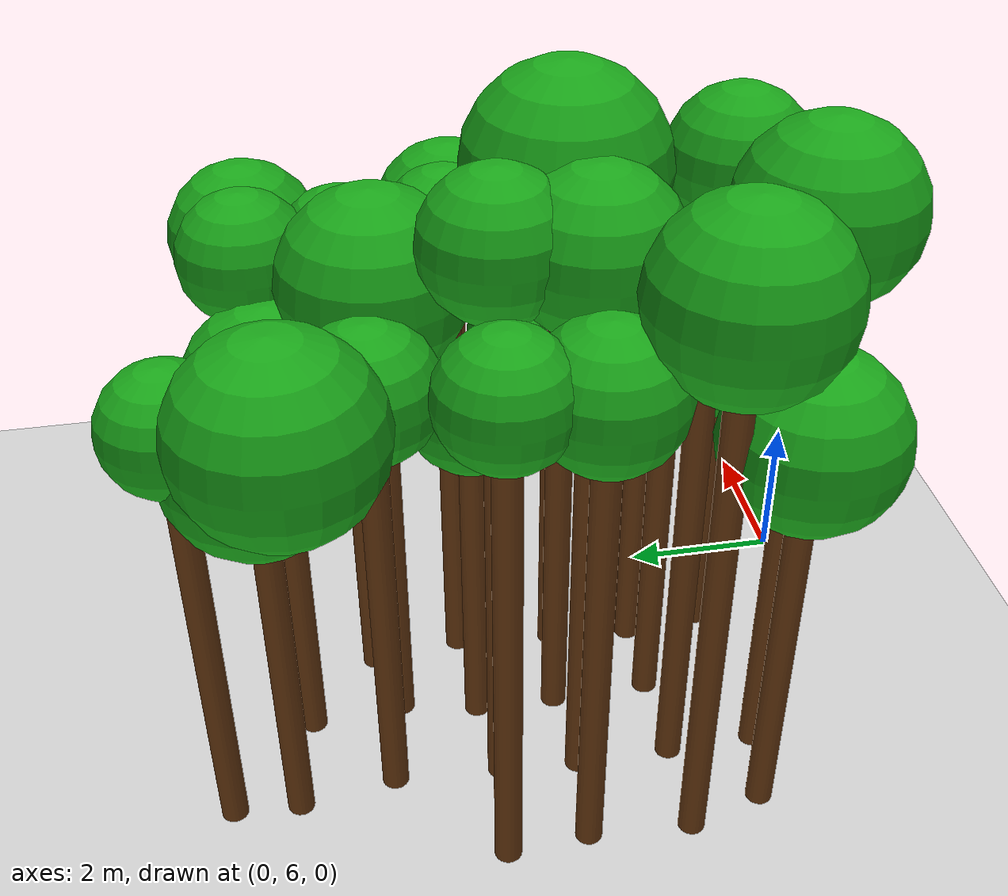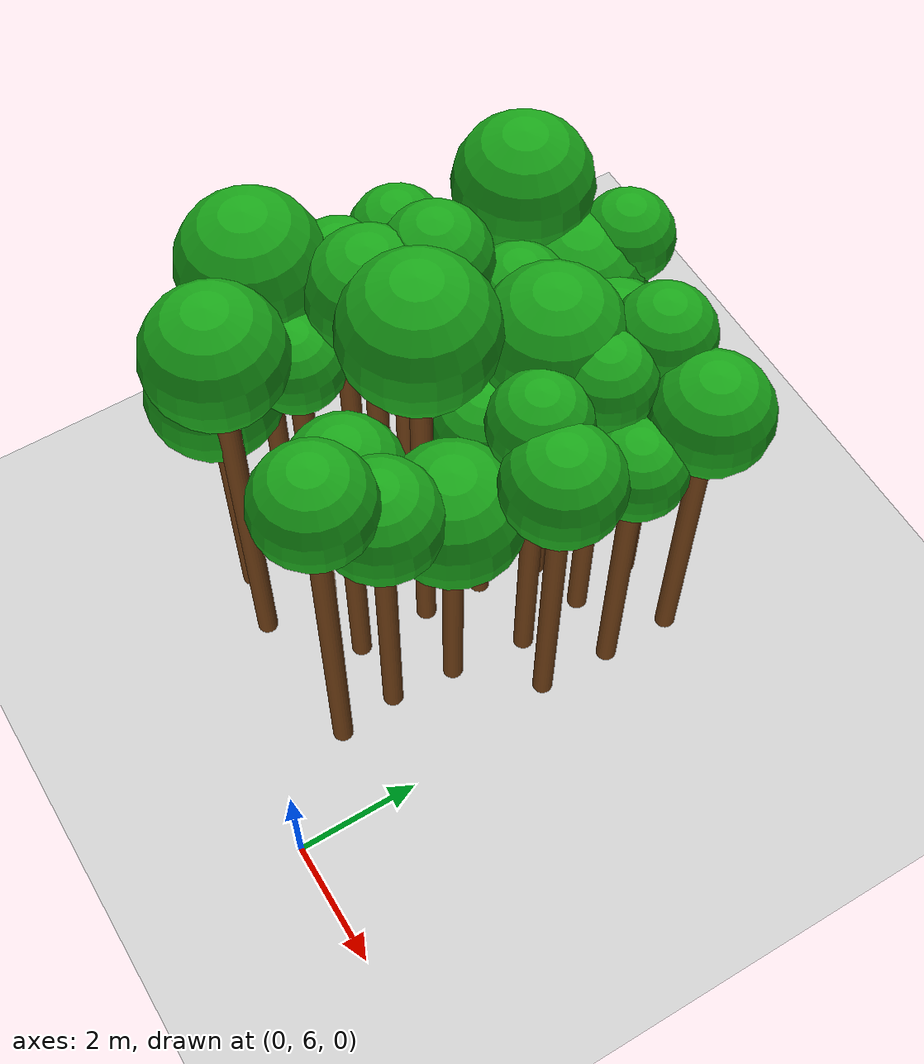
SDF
<sdf version="1.6">
 <world name="forest_world">
  <include><uri>model://sun</uri></include>
  <include><uri>model://ground_plane</uri></include>
  <model name="tree_1299_trunk">
   <static>true</static>
   <pose>-4.55 7.57 2.38 0 0 0</pose>
   <link name="link">
    <collision name="collision">
     <geometry><cylinder><radius>0.16</radius><length>4.76</length></cylinder></geometry>
    </collision>
    <visual name="visual">
     <geometry><cylinder><radius>0.16</radius><length>4.76</length></cylinder></geometry>
     <material><ambient>0.35 0.20 0.05 1</ambient><diffuse>0.45 0.25 0.08 1</diffuse></material>
    </visual>
   </link>
  </model>
  <model name="tree_1299_leaf">
   <static>true</static>
   <pose>-4.55 7.57 5.36 0 0 0</pose>
   <link name="link">
    <collision name="collision"><geometry><sphere><radius>1.00</radius></sphere></geometry></collision>
    <visual name="visual">
     <geometry><sphere><radius>1.00</radius></sphere></geometry>
     <material><ambient>0.05 0.45 0.05 1</ambient><diffuse>0.10 0.65 0.10 1</diffuse></material>
    </visual>
   </link>
  </model>
  <model name="tree_1300_trunk">
   <static>true</static>
   <pose>-4.84 8.50 3.31 0 0 0</pose>
   <link name="link">
    <collision name="collision">
     <geometry><cylinder><radius>0.16</radius><length>6.62</length></cylinder></geometry>
    </collision>
    <visual name="visual">
     <geometry><cylinder><radius>0.16</radius><length>6.62</length></cylinder></geometry>
     <material><ambient>0.35 0.20 0.05 1</ambient><diffuse>0.45 0.25 0.08 1</diffuse></material>
    </visual>
   </link>
  </model>
  <model name="tree_1300_leaf">
   <static>true</static>
   <pose>-4.84 8.50 7.24 0 0 0</pose>
   <link name="link">
    <collision name="collision"><geometry><sphere><radius>1.03</radius></sphere></geometry></collision>
    <visual name="visual">
     <geometry><sphere><radius>1.03</radius></sphere></geometry>
     <material><ambient>0.05 0.45 0.05 1</ambient><diffuse>0.10 0.65 0.10 1</diffuse></material>
    </visual>
   </link>
  </model>
  <model name="tree_1301_trunk">
   <static>true</static>
   <pose>-4.77 9.74 2.92 0 0 0</pose>
   <link name="link">
    <collision name="collision">
     <geometry><cylinder><radius>0.16</radius><length>5.83</length></cylinder></geometry>
    </collision>
    <visual name="visual">
     <geometry><cylinder><radius>0.16</radius><length>5.83</length></cylinder></geometry>
     <material><ambient>0.35 0.20 0.05 1</ambient><diffuse>0.45 0.25 0.08 1</diffuse></material>
    </visual>
   </link>
  </model>
  <model name="tree_1301_leaf">
   <static>true</static>
   <pose>-4.77 9.74 6.31 0 0 0</pose>
   <link name="link">
    <collision name="collision"><geometry><sphere><radius>0.80</radius></sphere></geometry></collision>
    <visual name="visual">
     <geometry><sphere><radius>0.80</radius></sphere></geometry>
     <material><ambient>0.05 0.45 0.05 1</ambient><diffuse>0.10 0.65 0.10 1</diffuse></material>
    </visual>
   </link>
  </model>
  <model name="tree_1302_trunk">
   <static>true</static>
   <pose>-4.85 10.72 3.00 0 0 0</pose>
   <link name="link">
    <collision name="collision">
     <geometry><cylinder><radius>0.16</radius><length>6.00</length></cylinder></geometry>
    </collision>
    <visual name="visual">
     <geometry><cylinder><radius>0.16</radius><length>6.00</length></cylinder></geometry>
     <material><ambient>0.35 0.20 0.05 1</ambient><diffuse>0.45 0.25 0.08 1</diffuse></material>
    </visual>
   </link>
  </model>
  <model name="tree_1302_leaf">
   <static>true</static>
   <pose>-4.85 10.72 6.44 0 0 0</pose>
   <link name="link">
    <collision name="collision"><geometry><sphere><radius>0.72</radius></sphere></geometry></collision>
    <visual name="visual">
     <geometry><sphere><radius>0.72</radius></sphere></geometry>
     <material><ambient>0.05 0.45 0.05 1</ambient><diffuse>0.10 0.65 0.10 1</diffuse></material>
    </visual>
   </link>
  </model>
  <model name="tree_1304_leaf">
   <static>true</static>
   <pose>-4.86 12.79 6.29 0 0 0</pose>
   <link name="link">
    <collision name="collision"><geometry><sphere><radius>1.05</radius></sphere></geometry></collision>
    <visual name="visual">
     <geometry><sphere><radius>1.05</radius></sphere></geometry>
     <material><ambient>0.05 0.45 0.05 1</ambient><diffuse>0.10 0.65 0.10 1</diffuse></material>
    </visual>
   </link>
  </model>
  <model name="tree_1354_trunk">
   <static>true</static>
   <pose>-3.64 7.37 3.41 0 0 0</pose>
   <link name="link">
    <collision name="collision">
     <geometry><cylinder><radius>0.16</radius><length>6.81</length></cylinder></geometry>
    </collision>
    <visual name="visual">
     <geometry><cylinder><radius>0.16</radius><length>6.81</length></cylinder></geometry>
     <material><ambient>0.35 0.20 0.05 1</ambient><diffuse>0.45 0.25 0.08 1</diffuse></material>
    </visual>
   </link>
  </model>
  <model name="tree_1354_leaf">
   <static>true</static>
   <pose>-3.64 7.37 7.40 0 0 0</pose>
   <link name="link">
    <collision name="collision"><geometry><sphere><radius>0.98</radius></sphere></geometry></collision>
    <visual name="visual">
     <geometry><sphere><radius>0.98</radius></sphere></geometry>
     <material><ambient>0.05 0.45 0.05 1</ambient><diffuse>0.10 0.65 0.10 1</diffuse></material>
    </visual>
   </link>
  </model>
  <model name="tree_1355_trunk">
   <static>true</static>
   <pose>-3.65 8.47 3.02 0 0 0</pose>
   <link name="link">
    <collision name="collision">
     <geometry><cylinder><radius>0.16</radius><length>6.04</length></cylinder></geometry>
    </collision>
    <visual name="visual">
     <geometry><cylinder><radius>0.16</radius><length>6.04</length></cylinder></geometry>
     <material><ambient>0.35 0.20 0.05 1</ambient><diffuse>0.45 0.25 0.08 1</diffuse></material>
    </visual>
   </link>
  </model>
  <model name="tree_1355_leaf">
   <static>true</static>
   <pose>-3.65 8.47 6.46 0 0 0</pose>
   <link name="link">
    <collision name="collision"><geometry><sphere><radius>0.70</radius></sphere></geometry></collision>
    <visual name="visual">
     <geometry><sphere><radius>0.70</radius></sphere></geometry>
     <material><ambient>0.05 0.45 0.05 1</ambient><diffuse>0.10 0.65 0.10 1</diffuse></material>
    </visual>
   </link>
  </model>
  <model name="tree_1356_trunk">
   <static>true</static>
   <pose>-3.66 9.63 3.33 0 0 0</pose>
   <link name="link">
    <collision name="collision">
     <geometry><cylinder><radius>0.16</radius><length>6.66</length></cylinder></geometry>
    </collision>
    <visual name="visual">
     <geometry><cylinder><radius>0.16</radius><length>6.66</length></cylinder></geometry>
     <material><ambient>0.35 0.20 0.05 1</ambient><diffuse>0.45 0.25 0.08 1</diffuse></material>
    </visual>
   </link>
  </model>
  <model name="tree_1356_leaf">
   <static>true</static>
   <pose>-3.66 9.63 7.20 0 0 0</pose>
   <link name="link">
    <collision name="collision"><geometry><sphere><radius>0.90</radius></sphere></geometry></collision>
    <visual name="visual">
     <geometry><sphere><radius>0.90</radius></sphere></geometry>
     <material><ambient>0.05 0.45 0.05 1</ambient><diffuse>0.10 0.65 0.10 1</diffuse></material>
    </visual>
   </link>
  </model>
  <model name="tree_1357_trunk">
   <static>true</static>
   <pose>-3.59 10.59 3.43 0 0 0</pose>
   <link name="link">
    <collision name="collision">
     <geometry><cylinder><radius>0.16</radius><length>6.86</length></cylinder></geometry>
    </collision>
    <visual name="visual">
     <geometry><cylinder><radius>0.16</radius><length>6.86</length></cylinder></geometry>
     <material><ambient>0.35 0.20 0.05 1</ambient><diffuse>0.45 0.25 0.08 1</diffuse></material>
    </visual>
   </link>
  </model>
  <model name="tree_1357_leaf">
   <static>true</static>
   <pose>-3.59 10.59 7.33 0 0 0</pose>
   <link name="link">
    <collision name="collision"><geometry><sphere><radius>0.79</radius></sphere></geometry></collision>
    <visual name="visual">
     <geometry><sphere><radius>0.79</radius></sphere></geometry>
     <material><ambient>0.05 0.45 0.05 1</ambient><diffuse>0.10 0.65 0.10 1</diffuse></material>
    </visual>
   </link>
  </model>
  <model name="tree_1358_trunk">
   <static>true</static>
   <pose>-3.52 11.89 2.65 0 0 0</pose>
   <link name="link">
    <collision name="collision">
     <geometry><cylinder><radius>0.16</radius><length>5.30</length></cylinder></geometry>
    </collision>
    <visual name="visual">
     <geometry><cylinder><radius>0.16</radius><length>5.30</length></cylinder></geometry>
     <material><ambient>0.35 0.20 0.05 1</ambient><diffuse>0.45 0.25 0.08 1</diffuse></material>
    </visual>
   </link>
  </model>
  <model name="tree_1358_leaf">
   <static>true</static>
   <pose>-3.52 11.89 5.77 0 0 0</pose>
   <link name="link">
    <collision name="collision"><geometry><sphere><radius>0.78</radius></sphere></geometry></collision>
    <visual name="visual">
     <geometry><sphere><radius>0.78</radius></sphere></geometry>
     <material><ambient>0.05 0.45 0.05 1</ambient><diffuse>0.10 0.65 0.10 1</diffuse></material>
    </visual>
   </link>
  </model>
  <model name="tree_1359_trunk">
   <static>true</static>
   <pose>-3.72 13.06 2.30 0 0 0</pose>
   <link name="link">
    <collision name="collision">
     <geometry><cylinder><radius>0.16</radius><length>4.60</length></cylinder></geometry>
    </collision>
    <visual name="visual">
     <geometry><cylinder><radius>0.16</radius><length>4.60</length></cylinder></geometry>
     <material><ambient>0.35 0.20 0.05 1</ambient><diffuse>0.45 0.25 0.08 1</diffuse></material>
    </visual>
   </link>
  </model>
  <model name="tree_1359_leaf">
   <static>true</static>
   <pose>-3.72 13.06 5.21 0 0 0</pose>
   <link name="link">
    <collision name="collision"><geometry><sphere><radius>1.02</radius></sphere></geometry></collision>
    <visual name="visual">
     <geometry><sphere><radius>1.02</radius></sphere></geometry>
     <material><ambient>0.05 0.45 0.05 1</ambient><diffuse>0.10 0.65 0.10 1</diffuse></material>
    </visual>
   </link>
  </model>
  <model name="tree_1360_trunk">
   <static>true</static>
   <pose>-3.68 13.85 2.63 0 0 0</pose>
   <link name="link">
    <collision name="collision">
     <geometry><cylinder><radius>0.16</radius><length>5.26</length></cylinder></geometry>
    </collision>
    <visual name="visual">
     <geometry><cylinder><radius>0.16</radius><length>5.26</length></cylinder></geometry>
     <material><ambient>0.35 0.20 0.05 1</ambient><diffuse>0.45 0.25 0.08 1</diffuse></material>
    </visual>
   </link>
  </model>
  <model name="tree_1360_leaf">
   <static>true</static>
   <pose>-3.68 13.85 5.68 0 0 0</pose>
   <link name="link">
    <collision name="collision"><geometry><sphere><radius>0.71</radius></sphere></geometry></collision>
    <visual name="visual">
     <geometry><sphere><radius>0.71</radius></sphere></geometry>
     <material><ambient>0.05 0.45 0.05 1</ambient><diffuse>0.10 0.65 0.10 1</diffuse></material>
    </visual>
   </link>
  </model>
  <model name="tree_1407_trunk">
   <static>true</static>
   <pose>-2.50 8.48 2.33 0 0 0</pose>
   <link name="link">
    <collision name="collision">
     <geometry><cylinder><radius>0.16</radius><length>4.66</length></cylinder></geometry>
    </collision>
    <visual name="visual">
     <geometry><cylinder><radius>0.16</radius><length>4.66</length></cylinder></geometry>
     <material><ambient>0.35 0.20 0.05 1</ambient><diffuse>0.45 0.25 0.08 1</diffuse></material>
    </visual>
   </link>
  </model>
  <model name="tree_1407_leaf">
   <static>true</static>
   <pose>-2.50 8.48 5.20 0 0 0</pose>
   <link name="link">
    <collision name="collision"><geometry><sphere><radius>0.89</radius></sphere></geometry></collision>
    <visual name="visual">
     <geometry><sphere><radius>0.89</radius></sphere></geometry>
     <material><ambient>0.05 0.45 0.05 1</ambient><diffuse>0.10 0.65 0.10 1</diffuse></material>
    </visual>
   </link>
  </model>
  <model name="tree_1408_trunk">
   <static>true</static>
   <pose>-2.53 9.71 3.45 0 0 0</pose>
   <link name="link">
    <collision name="collision">
     <geometry><cylinder><radius>0.16</radius><length>6.91</length></cylinder></geometry>
    </collision>
    <visual name="visual">
     <geometry><cylinder><radius>0.16</radius><length>6.91</length></cylinder></geometry>
     <material><ambient>0.35 0.20 0.05 1</ambient><diffuse>0.45 0.25 0.08 1</diffuse></material>
    </visual>
   </link>
  </model>
  <model name="tree_1408_leaf">
   <static>true</static>
   <pose>-2.53 9.71 7.56 0 0 0</pose>
   <link name="link">
    <collision name="collision"><geometry><sphere><radius>1.09</radius></sphere></geometry></collision>
    <visual name="visual">
     <geometry><sphere><radius>1.09</radius></sphere></geometry>
     <material><ambient>0.05 0.45 0.05 1</ambient><diffuse>0.10 0.65 0.10 1</diffuse></material>
    </visual>
   </link>
  </model>
  <model name="tree_1409_trunk">
   <static>true</static>
   <pose>-2.51 10.71 2.14 0 0 0</pose>
   <link name="link">
    <collision name="collision">
     <geometry><cylinder><radius>0.16</radius><length>4.29</length></cylinder></geometry>
    </collision>
    <visual name="visual">
     <geometry><cylinder><radius>0.16</radius><length>4.29</length></cylinder></geometry>
     <material><ambient>0.35 0.20 0.05 1</ambient><diffuse>0.45 0.25 0.08 1</diffuse></material>
    </visual>
   </link>
  </model>
  <model name="tree_1409_leaf">
   <static>true</static>
   <pose>-2.51 10.71 4.74 0 0 0</pose>
   <link name="link">
    <collision name="collision"><geometry><sphere><radius>0.76</radius></sphere></geometry></collision>
    <visual name="visual">
     <geometry><sphere><radius>0.76</radius></sphere></geometry>
     <material><ambient>0.05 0.45 0.05 1</ambient><diffuse>0.10 0.65 0.10 1</diffuse></material>
    </visual>
   </link>
  </model>
  <model name="tree_1410_trunk">
   <static>true</static>
   <pose>-2.32 11.67 2.85 0 0 0</pose>
   <link name="link">
    <collision name="collision">
     <geometry><cylinder><radius>0.16</radius><length>5.69</length></cylinder></geometry>
    </collision>
    <visual name="visual">
     <geometry><cylinder><radius>0.16</radius><length>5.69</length></cylinder></geometry>
     <material><ambient>0.35 0.20 0.05 1</ambient><diffuse>0.45 0.25 0.08 1</diffuse></material>
    </visual>
   </link>
  </model>
  <model name="tree_1410_leaf">
   <static>true</static>
   <pose>-2.32 11.67 6.32 0 0 0</pose>
   <link name="link">
    <collision name="collision"><geometry><sphere><radius>1.05</radius></sphere></geometry></collision>
    <visual name="visual">
     <geometry><sphere><radius>1.05</radius></sphere></geometry>
     <material><ambient>0.05 0.45 0.05 1</ambient><diffuse>0.10 0.65 0.10 1</diffuse></material>
    </visual>
   </link>
  </model>
  <model name="tree_1411_trunk">
   <static>true</static>
   <pose>-2.42 12.81 2.29 0 0 0</pose>
   <link name="link">
    <collision name="collision">
     <geometry><cylinder><radius>0.16</radius><length>4.58</length></cylinder></geometry>
    </collision>
    <visual name="visual">
     <geometry><cylinder><radius>0.16</radius><length>4.58</length></cylinder></geometry>
     <material><ambient>0.35 0.20 0.05 1</ambient><diffuse>0.45 0.25 0.08 1</diffuse></material>
    </visual>
   </link>
  </model>
  <model name="tree_1411_leaf">
   <static>true</static>
   <pose>-2.42 12.81 5.19 0 0 0</pose>
   <link name="link">
    <collision name="collision"><geometry><sphere><radius>1.01</radius></sphere></geometry></collision>
    <visual name="visual">
     <geometry><sphere><radius>1.01</radius></sphere></geometry>
     <material><ambient>0.05 0.45 0.05 1</ambient><diffuse>0.10 0.65 0.10 1</diffuse></material>
    </visual>
   </link>
  </model>
  <model name="tree_1456_trunk">
   <static>true</static>
   <pose>-1.35 7.49 3.20 0 0 0</pose>
   <link name="link">
    <collision name="collision">
     <geometry><cylinder><radius>0.16</radius><length>6.40</length></cylinder></geometry>
    </collision>
    <visual name="visual">
     <geometry><cylinder><radius>0.16</radius><length>6.40</length></cylinder></geometry>
     <material><ambient>0.35 0.20 0.05 1</ambient><diffuse>0.45 0.25 0.08 1</diffuse></material>
    </visual>
   </link>
  </model>
  <model name="tree_1456_leaf">
   <static>true</static>
   <pose>-1.35 7.49 6.91 0 0 0</pose>
   <link name="link">
    <collision name="collision"><geometry><sphere><radius>0.85</radius></sphere></geometry></collision>
    <visual name="visual">
     <geometry><sphere><radius>0.85</radius></sphere></geometry>
     <material><ambient>0.05 0.45 0.05 1</ambient><diffuse>0.10 0.65 0.10 1</diffuse></material>
    </visual>
   </link>
  </model>
  <model name="tree_1457_trunk">
   <static>true</static>
   <pose>-1.47 8.47 2.49 0 0 0</pose>
   <link name="link">
    <collision name="collision">
     <geometry><cylinder><radius>0.16</radius><length>4.98</length></cylinder></geometry>
    </collision>
    <visual name="visual">
     <geometry><cylinder><radius>0.16</radius><length>4.98</length></cylinder></geometry>
     <material><ambient>0.35 0.20 0.05 1</ambient><diffuse>0.45 0.25 0.08 1</diffuse></material>
    </visual>
   </link>
  </model>
  <model name="tree_1457_leaf">
   <static>true</static>
   <pose>-1.47 8.47 5.52 0 0 0</pose>
   <link name="link">
    <collision name="collision"><geometry><sphere><radius>0.89</radius></sphere></geometry></collision>
    <visual name="visual">
     <geometry><sphere><radius>0.89</radius></sphere></geometry>
     <material><ambient>0.05 0.45 0.05 1</ambient><diffuse>0.10 0.65 0.10 1</diffuse></material>
    </visual>
   </link>
  </model>
  <model name="tree_1458_trunk">
   <static>true</static>
   <pose>-1.39 9.53 2.12 0 0 0</pose>
   <link name="link">
    <collision name="collision">
     <geometry><cylinder><radius>0.16</radius><length>4.24</length></cylinder></geometry>
    </collision>
    <visual name="visual">
     <geometry><cylinder><radius>0.16</radius><length>4.24</length></cylinder></geometry>
     <material><ambient>0.35 0.20 0.05 1</ambient><diffuse>0.45 0.25 0.08 1</diffuse></material>
    </visual>
   </link>
  </model>
  <model name="tree_1458_leaf">
   <static>true</static>
   <pose>-1.39 9.53 4.88 0 0 0</pose>
   <link name="link">
    <collision name="collision"><geometry><sphere><radius>1.05</radius></sphere></geometry></collision>
    <visual name="visual">
     <geometry><sphere><radius>1.05</radius></sphere></geometry>
     <material><ambient>0.05 0.45 0.05 1</ambient><diffuse>0.10 0.65 0.10 1</diffuse></material>
    </visual>
   </link>
  </model>
  <model name="tree_1459_trunk">
   <static>true</static>
   <pose>-1.26 10.78 2.92 0 0 0</pose>
   <link name="link">
    <collision name="collision">
     <geometry><cylinder><radius>0.16</radius><length>5.85</length></cylinder></geometry>
    </collision>
    <visual name="visual">
     <geometry><cylinder><radius>0.16</radius><length>5.85</length></cylinder></geometry>
     <material><ambient>0.35 0.20 0.05 1</ambient><diffuse>0.45 0.25 0.08 1</diffuse></material>
    </visual>
   </link>
  </model>
  <model name="tree_1459_leaf">
   <static>true</static>
   <pose>-1.26 10.78 6.29 0 0 0</pose>
   <link name="link">
    <collision name="collision"><geometry><sphere><radius>0.74</radius></sphere></geometry></collision>
    <visual name="visual">
     <geometry><sphere><radius>0.74</radius></sphere></geometry>
     <material><ambient>0.05 0.45 0.05 1</ambient><diffuse>0.10 0.65 0.10 1</diffuse></material>
    </visual>
   </link>
  </model>
  <model name="tree_1460_trunk">
   <static>true</static>
   <pose>-1.42 11.92 2.90 0 0 0</pose>
   <link name="link">
    <collision name="collision">
     <geometry><cylinder><radius>0.16</radius><length>5.79</length></cylinder></geometry>
    </collision>
    <visual name="visual">
     <geometry><cylinder><radius>0.16</radius><length>5.79</length></cylinder></geometry>
     <material><ambient>0.35 0.20 0.05 1</ambient><diffuse>0.45 0.25 0.08 1</diffuse></material>
    </visual>
   </link>
  </model>
  <model name="tree_1460_leaf">
   <static>true</static>
   <pose>-1.42 11.92 6.23 0 0 0</pose>
   <link name="link">
    <collision name="collision"><geometry><sphere><radius>0.73</radius></sphere></geometry></collision>
    <visual name="visual">
     <geometry><sphere><radius>0.73</radius></sphere></geometry>
     <material><ambient>0.05 0.45 0.05 1</ambient><diffuse>0.10 0.65 0.10 1</diffuse></material>
    </visual>
   </link>
  </model>
  <model name="tree_1461_trunk">
   <static>true</static>
   <pose>-1.58 12.97 2.95 0 0 0</pose>
   <link name="link">
    <collision name="collision">
     <geometry><cylinder><radius>0.16</radius><length>5.89</length></cylinder></geometry>
    </collision>
    <visual name="visual">
     <geometry><cylinder><radius>0.16</radius><length>5.89</length></cylinder></geometry>
     <material><ambient>0.35 0.20 0.05 1</ambient><diffuse>0.45 0.25 0.08 1</diffuse></material>
    </visual>
   </link>
  </model>
  <model name="tree_1461_leaf">
   <static>true</static>
   <pose>-1.58 12.97 6.34 0 0 0</pose>
   <link name="link">
    <collision name="collision"><geometry><sphere><radius>0.74</radius></sphere></geometry></collision>
    <visual name="visual">
     <geometry><sphere><radius>0.74</radius></sphere></geometry>
     <material><ambient>0.05 0.45 0.05 1</ambient><diffuse>0.10 0.65 0.10 1</diffuse></material>
    </visual>
   </link>
  </model>
  <model name="tree_1508_trunk">
   <static>true</static>
   <pose>-0.43 10.62 2.77 0 0 0</pose>
   <link name="link">
    <collision name="collision">
     <geometry><cylinder><radius>0.16</radius><length>5.54</length></cylinder></geometry>
    </collision>
    <visual name="visual">
     <geometry><cylinder><radius>0.16</radius><length>5.54</length></cylinder></geometry>
     <material><ambient>0.35 0.20 0.05 1</ambient><diffuse>0.45 0.25 0.08 1</diffuse></material>
    </visual>
   </link>
  </model>
  <model name="tree_1508_leaf">
   <static>true</static>
   <pose>-0.43 10.62 6.06 0 0 0</pose>
   <link name="link">
    <collision name="collision"><geometry><sphere><radius>0.87</radius></sphere></geometry></collision>
    <visual name="visual">
     <geometry><sphere><radius>0.87</radius></sphere></geometry>
     <material><ambient>0.05 0.45 0.05 1</ambient><diffuse>0.10 0.65 0.10 1</diffuse></material>
    </visual>
   </link>
  </model>
  <model name="tree_1509_trunk">
   <static>true</static>
   <pose>-0.39 11.81 2.54 0 0 0</pose>
   <link name="link">
    <collision name="collision">
     <geometry><cylinder><radius>0.16</radius><length>5.08</length></cylinder></geometry>
    </collision>
    <visual name="visual">
     <geometry><cylinder><radius>0.16</radius><length>5.08</length></cylinder></geometry>
     <material><ambient>0.35 0.20 0.05 1</ambient><diffuse>0.45 0.25 0.08 1</diffuse></material>
    </visual>
   </link>
  </model>
  <model name="tree_1509_leaf">
   <static>true</static>
   <pose>-0.39 11.81 5.51 0 0 0</pose>
   <link name="link">
    <collision name="collision"><geometry><sphere><radius>0.72</radius></sphere></geometry></collision>
    <visual name="visual">
     <geometry><sphere><radius>0.72</radius></sphere></geometry>
     <material><ambient>0.05 0.45 0.05 1</ambient><diffuse>0.10 0.65 0.10 1</diffuse></material>
    </visual>
   </link>
  </model>
  <model name="tree_1510_trunk">
   <static>true</static>
   <pose>-0.39 12.96 2.71 0 0 0</pose>
   <link name="link">
    <collision name="collision">
     <geometry><cylinder><radius>0.16</radius><length>5.43</length></cylinder></geometry>
    </collision>
    <visual name="visual">
     <geometry><cylinder><radius>0.16</radius><length>5.43</length></cylinder></geometry>
     <material><ambient>0.35 0.20 0.05 1</ambient><diffuse>0.45 0.25 0.08 1</diffuse></material>
    </visual>
   </link>
  </model>
  <model name="tree_1510_leaf">
   <static>true</static>
   <pose>-0.39 12.96 5.96 0 0 0</pose>
   <link name="link">
    <collision name="collision"><geometry><sphere><radius>0.88</radius></sphere></geometry></collision>
    <visual name="visual">
     <geometry><sphere><radius>0.88</radius></sphere></geometry>
     <material><ambient>0.05 0.45 0.05 1</ambient><diffuse>0.10 0.65 0.10 1</diffuse></material>
    </visual>
   </link>
  </model>
 </world>
</sdf>
